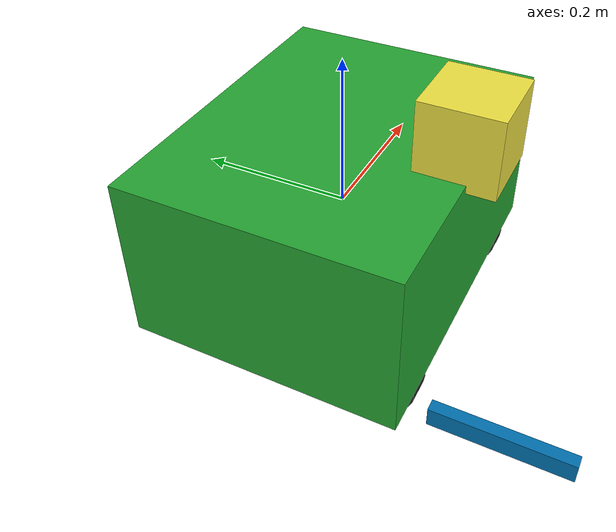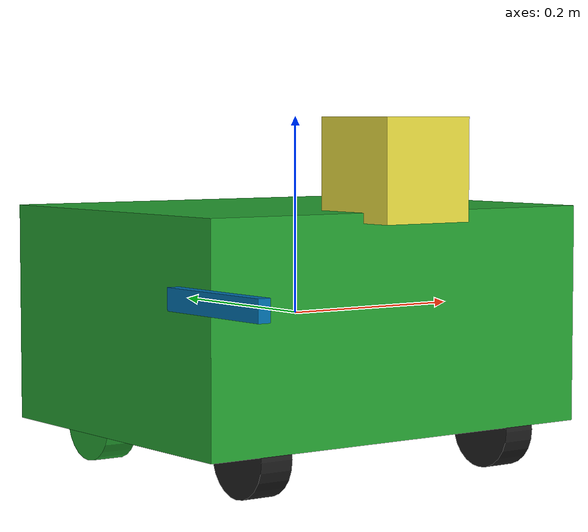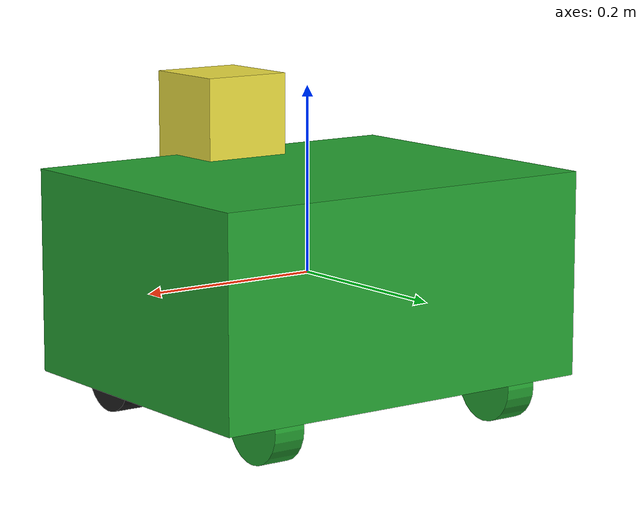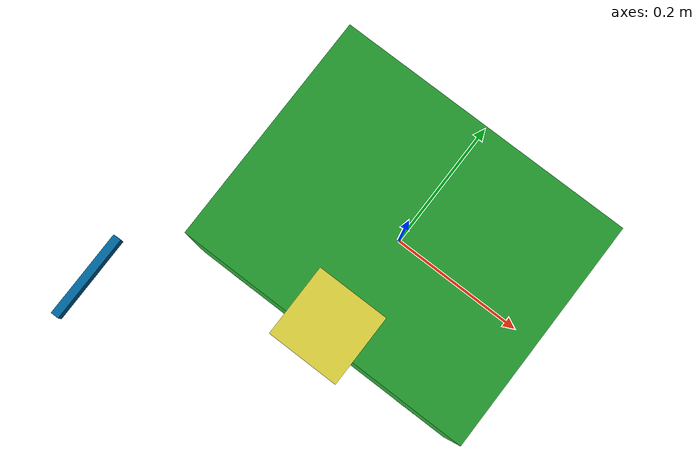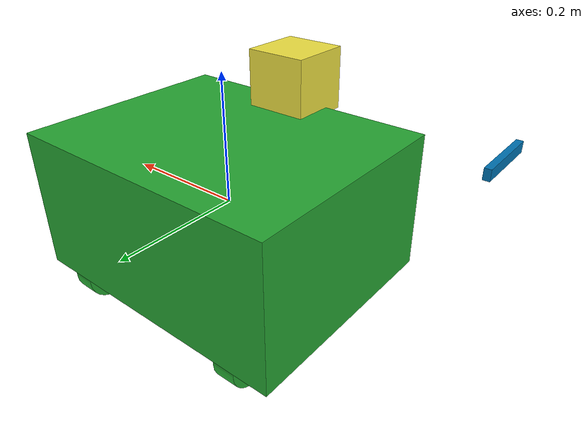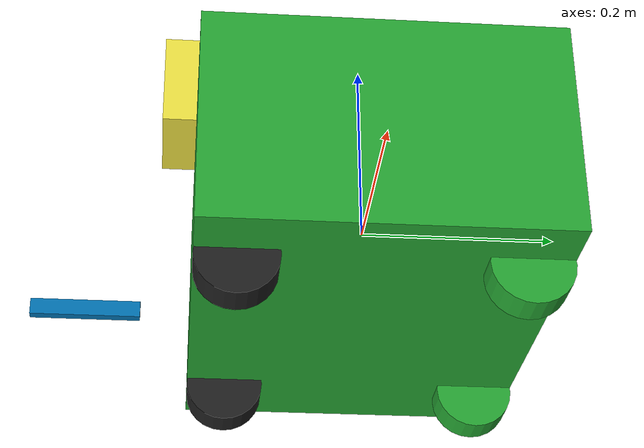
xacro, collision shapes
<?xml version='1.0'?>

<robot name="at1" xmlns:xacro="http://www.ros.org/wiki/xacro">

  <xacro:property name="cameraSize" value="0.05"/>
  <xacro:property name="cameraMass" value="0.1"/>

  <xacro:include filename="$(find at1_description)/urdf/at1.gazebo" />
  <xacro:include filename="$(find at1_description)/urdf/materials.xacro" />
  <xacro:include filename="$(find at1_description)/urdf/macros.xacro" />
  <xacro:property name="r200_cam_rgb_px" value="0.05"/>
  <xacro:property name="r200_cam_rgb_py" value="0.018"/>
  <xacro:property name="r200_cam_rgb_pz" value="0.013"/>
  <xacro:property name="r200_cam_depth_offset" value="0.01"/>

  <link name='chassis'>
    <pose>0 0 0.1 0 0 0</pose>

    <inertial>
      <mass value="10.0"/>
      <origin xyz="0.0 0 0.1" rpy=" 0 0 -1.5707"/>
      <inertia
          ixx="0.5" ixy="0" ixz="0"
          iyy="1.0" iyz="0"
          izz="0.1"
      />
    </inertial>

    <collision name='collision'>
      <geometry>
        <box size=".445 .35 .22"/>
      </geometry>
    </collision>

    <visual name='chassis_visual'>
      <origin xyz="0 0 0" rpy=" 0 0 -1.5707"/>
      <geometry>
        <box size=".445 .35 .22"/>
      </geometry>
    </visual>

    <collision name='caster_collision_1'>
      <origin xyz="0.15 0.135 -0.115" rpy="0 1.5707 0"/>
      <geometry>
        <cylinder radius="0.04" length="0.035"/>
      </geometry>
      <surface>
        <friction>
          <ode>
            <mu>0</mu>
            <mu2>0</mu2>
            <slip1>1.0</slip1>
            <slip2>1.0</slip2>
          </ode>
        </friction>
      </surface>
    </collision>

    <visual name='caster_visual_1'>
      <origin xyz="0.15 0.135 -0.115" rpy="0 1.5707 0"/>
      <geometry>
        <cylinder radius="0.04" length="0.035"/>
      </geometry>
    </visual>

    <collision name='caster_collision_2'>
      <origin xyz="-0.15 0.135 -0.115" rpy="0 1.5707 0"/>
      <geometry>
        <cylinder radius="0.04" length="0.035"/>
      </geometry>
      <surface>
        <friction>
          <ode>
            <mu>0</mu>
            <mu2>0</mu2>
            <slip1>1.0</slip1>
            <slip2>1.0</slip2>
          </ode>
        </friction>
      </surface>
    </collision>

    <visual name='caster_visual_2'>
      <origin xyz="-0.15 0.135 -0.115" rpy="0 1.5707 0"/>
      <geometry>
        <cylinder radius="0.04" length="0.035"/>
      </geometry>
    </visual>

  </link>

  <link name="left_wheel">
    <!--origin xyz="0.1 0.13 0.1" rpy="0 1.5707 1.5707"/-->
    <collision name="collision">
      <origin xyz="0 0 0" rpy="0 1.5707 -1.5707"/>
      <geometry>
        <cylinder radius="0.04" length="0.035"/>
      </geometry>
    </collision>
    <visual name="left_wheel_visual">
      <origin xyz="0 0 0" rpy="0 1.5707 1.5707"/>
      <geometry>
        <cylinder radius="0.04" length="0.035"/>
      </geometry>
    </visual>
    <inertial>
      <origin xyz="0 0 0" rpy="0 1.5707 1.5707"/>
      <mass value="5"/>
      <cylinder_inertia m="5" r="0.04" h="0.035"/>
      <inertia
        ixx="1.0" ixy="0.0" ixz="0.0"
        iyy="1.0" iyz="0.0"
        izz="1.0"/>
    </inertial>
  </link>

  <link name="right_wheel">
    <!--origin xyz="0.1 -0.13 0.1" rpy="0 1.5707 1.5707"/-->
    <collision name="collision">
      <origin xyz="0 0 0" rpy="0 1.5707 -1.5707"/>
      <geometry>
        <cylinder radius="0.04" length="0.035"/>
      </geometry>
    </collision>
    <visual name="right_wheel_visual">
      <origin xyz="0 0 0" rpy="0 1.5707 1.5707"/>
      <geometry>
        <cylinder radius="0.04" length="0.035"/>
      </geometry>
    </visual>
    <inertial>
      <origin xyz="0 0 0" rpy="0 1.5707 1.5707"/>
      <mass value="5"/>
      <cylinder_inertia m="5" r="0.04" h="0.035"/>
      <inertia
        ixx="1.0" ixy="0.0" ixz="0.0"
        iyy="1.0" iyz="0.0"
        izz="1.0"/>
    </inertial>
  </link>

  <joint type="continuous" name="left_wheel_hinge">
    <origin xyz="0.15 -0.135 -0.115" rpy="0 0 1.5707"/>
    <!--origin xyz="0.1 0.13 0" rpy="0 1.5707 1.5707"/-->
    <child link="left_wheel"/>
    <parent link="chassis"/>
    <axis xyz="0 1 0" rpy="0 0 0"/>
    <limit effort="100" velocity="100"/>
    <joint_properties damping="0.0" friction="0.0"/>
  </joint>

  <joint type="continuous" name="right_wheel_hinge">
    <origin xyz="-0.15 -0.135 -0.115" rpy="0 0 1.5707"/>
    <!--origin xyz="0.1 -0.13 0" rpy="0 1.5707 1.5707"/-->
    <child link="right_wheel"/>
    <parent link="chassis"/>
    <axis xyz="0 1 0" rpy="0 0 0"/>
    <limit effort="100" velocity="100"/>
    <joint_properties damping="0.0" friction="0.0"/>
  </joint>

  <joint name="hokuyo_joint" type="fixed">
    <axis xyz="1 0 0" />
    <origin xyz="0 -0.16 .15" rpy="0 0 -1.5707"/>
    <parent link="chassis"/>
    <child link="hokuyo"/>
  </joint>

  <!-- Hokuyo Laser -->
  <link name="hokuyo">
    <collision>
      <origin xyz="0 0 0" rpy="0 0 -1.5707"/>
      <geometry>
    <box size="0.1 0.1 0.1"/>
      </geometry>
    </collision>

    <visual>
      <origin xyz="0 0 0" rpy="0 0 -1.5707"/>
      <geometry>
        <mesh filename="package://at1_description/meshes/hokuyo.dae"/>
      </geometry>
    </visual>

    <inertial>
      <mass value="1e-5" />
      <origin xyz="0 0 0" rpy="0 0 -1.5707"/>
      <inertia ixx="1e-6" ixy="0" ixz="0" iyy="1e-6" iyz="0" izz="1e-6" />
    </inertial>
  </link>

  <!-- Realsense -->

  <joint name="3dcamera_joint" type="fixed">
    <origin xyz="0 -0.3 0.04" rpy="0 0 -1.5707"/>
    <parent link="chassis"/>
    <child link="camera_link"/>
  </joint>

  <link name="camera_link">
    <visual>
     <origin xyz="0 -0.3 0.04" rpy="0 0 -1.5707"/>
      <geometry>
       <mesh filename="//at1_description/meshes/r200.dae"/>
      </geometry>
    </visual>
    <collision>
      <origin xyz="0 -0.3 0.007" rpy="0 0 -1.5707"/>
      <geometry>
        <box size="0.012 0.132 0.020"/>
      </geometry>
    </collision>
  </link>

  <joint name="camera_rgb_joint" type="fixed">
    <origin xyz="${r200_cam_rgb_px} ${r200_cam_rgb_py} ${r200_cam_rgb_pz}" rpy="0 0 -1.5707"/>
    <parent link="camera_link"/>
    <child link="camera_rgb_frame"/>
  </joint>
  <link name="camera_rgb_frame"/>

  <joint name="camera_rgb_optical_joint" type="fixed">
    <origin xyz="0 0 0" rpy="-1.57 0 0"/>
    <parent link="camera_rgb_frame"/>
    <child link="camera_rgb_optical_frame"/>
  </joint>
  <link name="camera_rgb_optical_frame"/>

  <joint name="camera_depth_joint" type="fixed">
    <origin xyz="${r200_cam_rgb_px} ${r200_cam_rgb_py + r200_cam_depth_offset} ${r200_cam_rgb_pz}" rpy="0 0 0"/>
    <parent link="camera_link"/>
    <child link="camera_depth_frame"/>
  </joint>
  <link name="camera_depth_frame"/>

  <joint name="camera_depth_optical_joint" type="fixed">
    <origin xyz="0 0 0" rpy="-1.57 0 0"/>
    <parent link="camera_depth_frame"/>
    <child link="camera_depth_optical_frame"/>
  </joint>
  <link name="camera_depth_optical_frame"/>

</robot>
